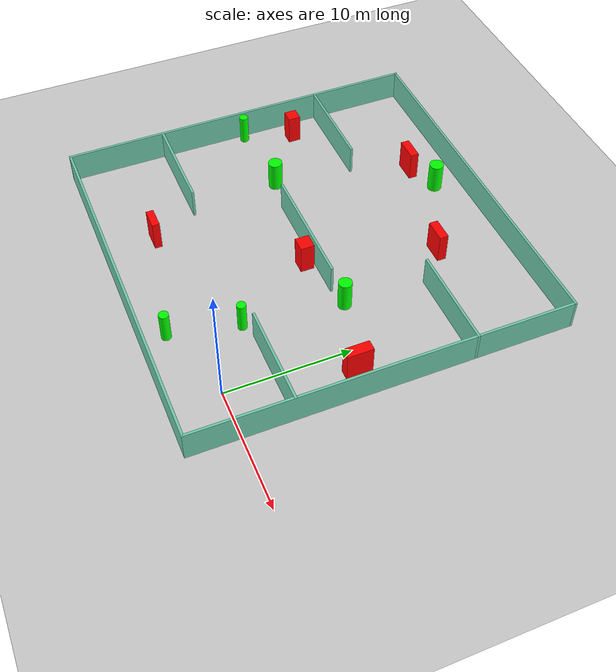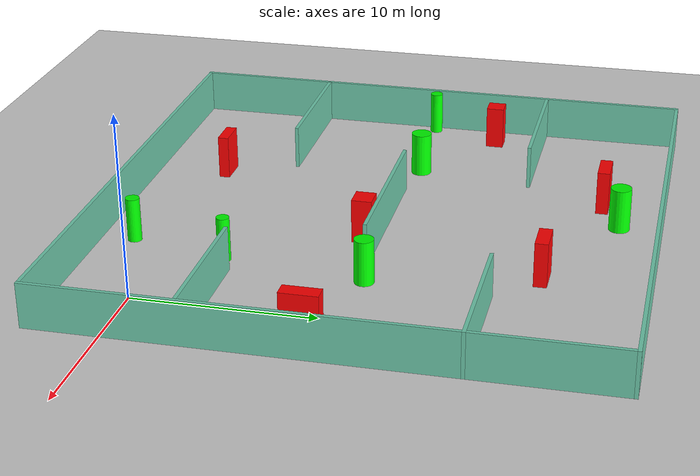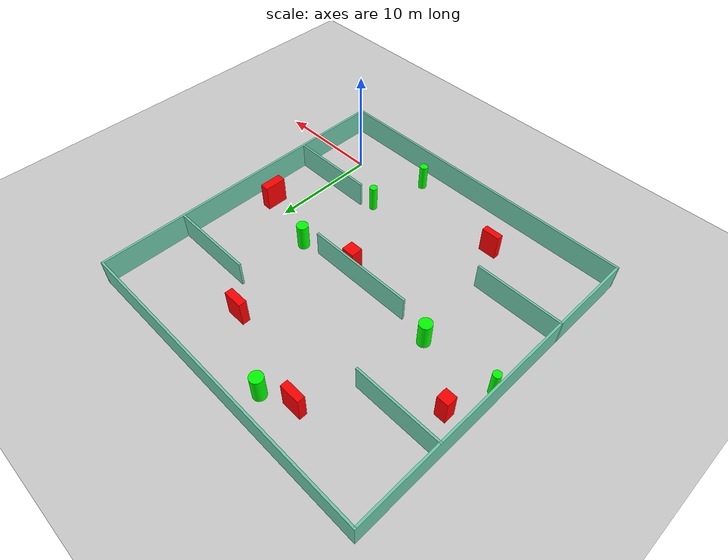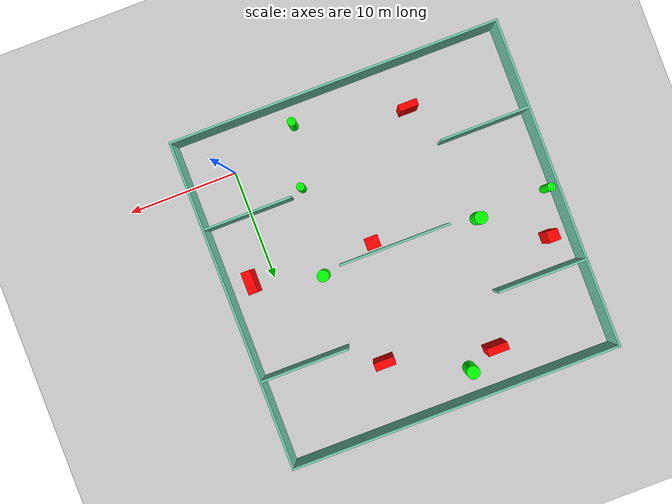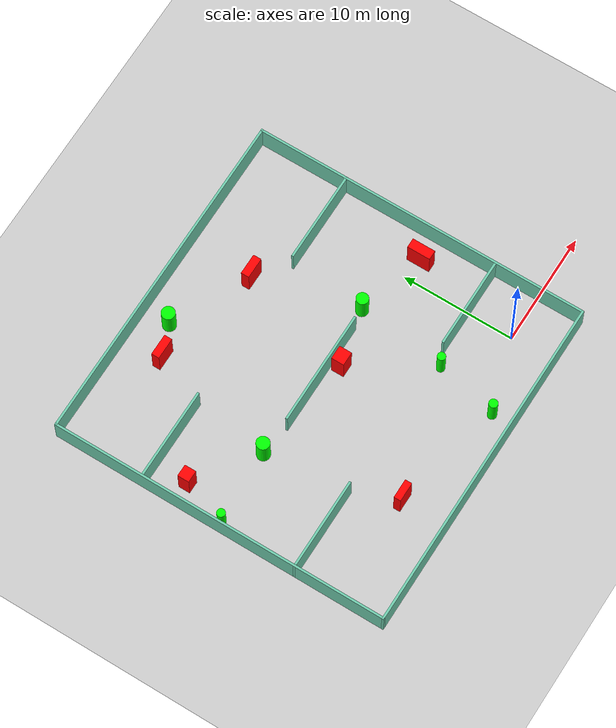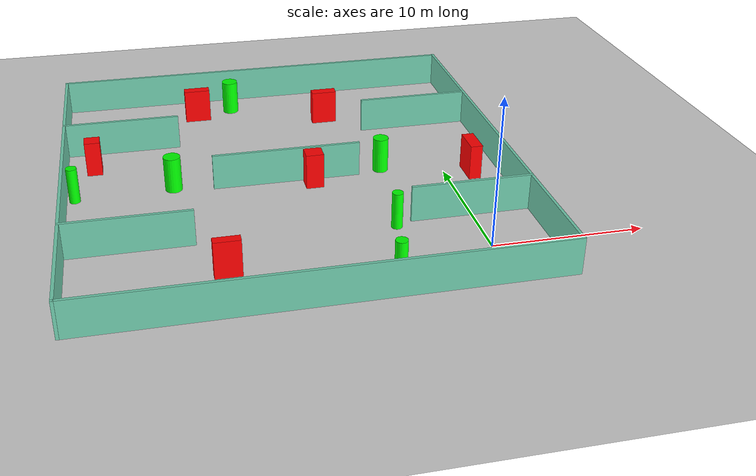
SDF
<sdf version="1.7">
 <world name="default">
  <light name="sun" type="directional">
   <pose>0 0 10 0 -0 0</pose>
   <diffuse>0.8 0.8 0.8 1</diffuse>
   <specular>0.2 0.2 0.2 1</specular>
   <attenuation>
    <range>1000</range>
    <constant>0.9</constant>
    <linear>0.01</linear>
    <quadratic>0.001</quadratic>
   </attenuation>
   <direction>-0.5 0.1 -0.9</direction>
   <spot><inner_angle>0</inner_angle><outer_angle>0</outer_angle><falloff>0</falloff></spot>
  </light>
  <model name="ground_plane">
   <static>1</static>
   <link name="link">
    <collision name="collision">
     <geometry><plane><normal>0 0 1</normal><size>100 100</size></plane></geometry>
     <surface>
      <contact><collide_bitmask>65535</collide_bitmask></contact>
      <friction><ode><mu>100</mu><mu2>50</mu2></ode></friction>
     </surface>
    </collision>
    <visual name="visual">
     <cast_shadows>0</cast_shadows>
     <geometry><plane><normal>0 0 1</normal><size>100 100</size></plane></geometry>
     <material>
      <script><uri>file://media/materials/scripts/gazebo.material</uri><name>Gazebo/Grey</name></script>
     </material>
    </visual>
   </link>
  </model>
  <gravity>0 0 -9.8</gravity>
  <magnetic_field>6e-06 2.3e-05 -4.2e-05</magnetic_field>
  <atmosphere type="adiabatic"/>
  <physics type="ode">
   <max_step_size>0.001</max_step_size>
   <real_time_factor>1</real_time_factor>
   <real_time_update_rate>1000</real_time_update_rate>
  </physics>
  <scene><ambient>0.4 0.4 0.4 1</ambient><background>0.7 0.7 0.7 1</background><shadows>1</shadows></scene>
  <spherical_coordinates>
   <surface_model>EARTH_WGS84</surface_model>
   <latitude_deg>0</latitude_deg>
   <longitude_deg>0</longitude_deg>
   <elevation>0</elevation>
   <heading_deg>0</heading_deg>
  </spherical_coordinates>
  <model name="my_base_walls">
   <link name="Wall_10">
    <collision name="Wall_10_Collision">
     <geometry><box><size>8.2 0.2 2.5</size></box></geometry>
     <pose>0 0 1.25 0 -0 0</pose>
    </collision>
    <visual name="Wall_10_Visual">
     <pose>0 0 1.25 0 -0 0</pose>
     <geometry><box><size>8.2 0.2 2.5</size></box></geometry>
     <material>
      <script><uri>file://media/materials/scripts/gazebo.material</uri><name>Gazebo/Grey</name></script>
      <ambient>0.435294 0.796078 0.67451 1</ambient>
     </material>
     <meta><layer>0</layer></meta>
    </visual>
    <pose>-11 -7 0 0 -0 0</pose>
   </link>
   <link name="Wall_12">
    <collision name="Wall_12_Collision">
     <geometry><box><size>8.2 0.2 2.5</size></box></geometry>
     <pose>0 0 1.25 0 -0 0</pose>
    </collision>
    <visual name="Wall_12_Visual">
     <pose>0 0 1.25 0 -0 0</pose>
     <geometry><box><size>8.2 0.2 2.5</size></box></geometry>
     <material>
      <script><uri>file://media/materials/scripts/gazebo.material</uri><name>Gazebo/Grey</name></script>
      <ambient>0.435294 0.796078 0.67451 1</ambient>
     </material>
     <meta><layer>0</layer></meta>
    </visual>
    <pose>-11 7 0 0 -0 0</pose>
   </link>
   <link name="Wall_14">
    <collision name="Wall_14_Collision">
     <geometry><box><size>8.2 0.2 2.5</size></box></geometry>
     <pose>0 0 1.25 0 -0 0</pose>
    </collision>
    <visual name="Wall_14_Visual">
     <pose>0 0 1.25 0 -0 0</pose>
     <geometry><box><size>8.2 0.2 2.5</size></box></geometry>
     <material>
      <script><uri>file://media/materials/scripts/gazebo.material</uri><name>Gazebo/Grey</name></script>
      <ambient>0.435294 0.796078 0.67451 1</ambient>
     </material>
     <meta><layer>0</layer></meta>
    </visual>
    <pose>11 7 0 0 -0 3.14159</pose>
   </link>
   <link name="Wall_16">
    <collision name="Wall_16_Collision">
     <geometry><box><size>10.2 0.2 2.5</size></box></geometry>
     <pose>0 0 1.25 0 -0 0</pose>
    </collision>
    <visual name="Wall_16_Visual">
     <pose>0 0 1.25 0 -0 0</pose>
     <geometry><box><size>10.2 0.2 2.5</size></box></geometry>
     <material>
      <script><uri>file://media/materials/scripts/gazebo.material</uri><name>Gazebo/Grey</name></script>
      <ambient>0.435294 0.796078 0.67451 1</ambient>
     </material>
     <meta><layer>0</layer></meta>
    </visual>
    <pose>0 0 0 0 -0 3.14159</pose>
   </link>
   <link name="Wall_2">
    <collision name="Wall_2_Collision">
     <geometry><box><size>30.2 0.2 2.5</size></box></geometry>
     <pose>0 0 1.25 0 -0 0</pose>
    </collision>
    <visual name="Wall_2_Visual">
     <pose>0 0 1.25 0 -0 0</pose>
     <geometry><box><size>30.2 0.2 2.5</size></box></geometry>
     <material>
      <script><uri>file://media/materials/scripts/gazebo.material</uri><name>Gazebo/Grey</name></script>
      <ambient>0.435294 0.796078 0.67451 1</ambient>
     </material>
     <meta><layer>0</layer></meta>
    </visual>
    <pose>0 -15 0 0 -0 3.14159</pose>
   </link>
   <link name="Wall_3">
    <collision name="Wall_3_Collision">
     <geometry><box><size>30.2 0.2 2.5</size></box></geometry>
     <pose>0 0 1.25 0 -0 0</pose>
    </collision>
    <visual name="Wall_3_Visual">
     <pose>0 0 1.25 0 -0 0</pose>
     <geometry><box><size>30.2 0.2 2.5</size></box></geometry>
     <material>
      <script><uri>file://media/materials/scripts/gazebo.material</uri><name>Gazebo/Grey</name></script>
      <ambient>0.435294 0.796078 0.67451 1</ambient>
     </material>
     <meta><layer>0</layer></meta>
    </visual>
    <pose>-15 0 0 0 -0 1.5708</pose>
   </link>
   <link name="Wall_4">
    <collision name="Wall_4_Collision">
     <geometry><box><size>30.2 0.2 2.5</size></box></geometry>
     <pose>0 0 1.25 0 -0 0</pose>
    </collision>
    <visual name="Wall_4_Visual">
     <pose>0 0 1.25 0 -0 0</pose>
     <geometry><box><size>30.2 0.2 2.5</size></box></geometry>
     <material>
      <script><uri>file://media/materials/scripts/gazebo.material</uri><name>Gazebo/Grey</name></script>
      <ambient>0.435294 0.796078 0.67451 1</ambient>
     </material>
     <meta><layer>0</layer></meta>
    </visual>
    <pose>0 15 0 0 -0 0</pose>
   </link>
   <link name="Wall_6">
    <collision name="Wall_6_Collision">
     <geometry><box><size>30.2 0.2 2.5</size></box></geometry>
     <pose>0 0 1.25 0 -0 0</pose>
    </collision>
    <visual name="Wall_6_Visual">
     <pose>0 0 1.25 0 -0 0</pose>
     <geometry><box><size>30.2 0.2 2.5</size></box></geometry>
     <material>
      <script><uri>file://media/materials/scripts/gazebo.material</uri><name>Gazebo/Grey</name></script>
      <ambient>0.435294 0.796078 0.67451 1</ambient>
     </material>
     <meta><layer>0</layer></meta>
    </visual>
    <pose>15 0 0 0 -0 1.5708</pose>
   </link>
   <link name="Wall_8">
    <collision name="Wall_8_Collision">
     <geometry><box><size>8.2 0.2 2.5</size></box></geometry>
     <pose>0 0 1.25 0 -0 0</pose>
    </collision>
    <visual name="Wall_8_Visual">
     <pose>0 0 1.25 0 -0 0</pose>
     <geometry><box><size>8.2 0.2 2.5</size></box></geometry>
     <material>
      <script><uri>file://media/materials/scripts/gazebo.material</uri><name>Gazebo/Grey</name></script>
      <ambient>0.435294 0.796078 0.67451 1</ambient>
     </material>
     <meta><layer>0</layer></meta>
    </visual>
    <pose>11 -7 0 0 -0 3.14159</pose>
   </link>
   <static>1</static>
   <pose>-11 11 0 0 -0 0</pose>
  </model>
  <model name="cylinder1">
   <static>1</static>
   <link name="link">
    <inertial>
     <mass>1</mass>
     <inertia><ixx>0.5</ixx><ixy>0</ixy><ixz>0</ixz><iyy>0.5</iyy><iyz>0</iyz><izz>1</izz></inertia>
    </inertial>
    <collision name="collision">
     <geometry><cylinder><radius>0.5799064954838511</radius><length>2.5</length></cylinder></geometry>
    </collision>
    <visual name="visual">
     <geometry><cylinder><radius>0.5799064954838511</radius><length>2.5</length></cylinder></geometry>
     <material>
      <ambient>0 1 0 1</ambient>
      <diffuse>0 1 0 1</diffuse>
      <specular>0.1 0.1 0.1 1</specular>
      <emissive>0 0 0 0</emissive>
     </material>
    </visual>
   </link>
   <pose>-18.7789576099513 11.455860967418289 1.25 0 0 0</pose>
  </model>
  <model name="cylinder2">
   <static>1</static>
   <link name="link">
    <inertial>
     <mass>1</mass>
     <inertia><ixx>0.5</ixx><ixy>0</ixy><ixz>0</ixz><iyy>0.5</iyy><iyz>0</iyz><izz>1</izz></inertia>
    </inertial>
    <collision name="collision">
     <geometry><cylinder><radius>0.38924615963266324</radius><length>2.5</length></cylinder></geometry>
    </collision>
    <visual name="visual">
     <geometry><cylinder><radius>0.38924615963266324</radius><length>2.5</length></cylinder></geometry>
     <material>
      <ambient>0 1 0 1</ambient>
      <diffuse>0 1 0 1</diffuse>
      <specular>0.1 0.1 0.1 1</specular>
      <emissive>0 0 0 0</emissive>
     </material>
    </visual>
   </link>
   <pose>-6.428359034083876 -2.0456112044076136 1.25 0 0 0</pose>
  </model>
  <model name="cylinder3">
   <static>1</static>
   <link name="link">
    <inertial>
     <mass>1</mass>
     <inertia><ixx>0.5</ixx><ixy>0</ixy><ixz>0</ixz><iyy>0.5</iyy><iyz>0</iyz><izz>1</izz></inertia>
    </inertial>
    <collision name="collision">
     <geometry><cylinder><radius>0.5354616418818804</radius><length>2.5</length></cylinder></geometry>
    </collision>
    <visual name="visual">
     <geometry><cylinder><radius>0.5354616418818804</radius><length>2.5</length></cylinder></geometry>
     <material>
      <ambient>0 1 0 1</ambient>
      <diffuse>0 1 0 1</diffuse>
      <specular>0.1 0.1 0.1 1</specular>
      <emissive>0 0 0 0</emissive>
     </material>
    </visual>
   </link>
   <pose>-4.268590855307572 11.343558810544797 1.25 0 0 0</pose>
  </model>
  <model name="cylinder4">
   <static>1</static>
   <link name="link">
    <inertial>
     <mass>1</mass>
     <inertia><ixx>0.5</ixx><ixy>0</ixy><ixz>0</ixz><iyy>0.5</iyy><iyz>0</iyz><izz>1</izz></inertia>
    </inertial>
    <collision name="collision">
     <geometry><cylinder><radius>0.5873724432858562</radius><length>2.5</length></cylinder></geometry>
    </collision>
    <visual name="visual">
     <geometry><cylinder><radius>0.5873724432858562</radius><length>2.5</length></cylinder></geometry>
     <material>
      <ambient>0 1 0 1</ambient>
      <diffuse>0 1 0 1</diffuse>
      <specular>0.1 0.1 0.1 1</specular>
      <emissive>0 0 0 0</emissive>
     </material>
    </visual>
   </link>
   <pose>-13.452200691800023 23.696844254482095 1.25 0 0 0</pose>
  </model>
  <model name="cylinder5">
   <static>1</static>
   <link name="link">
    <inertial>
     <mass>1</mass>
     <inertia><ixx>0.5</ixx><ixy>0</ixy><ixz>0</ixz><iyy>0.5</iyy><iyz>0</iyz><izz>1</izz></inertia>
    </inertial>
    <collision name="collision">
     <geometry><cylinder><radius>0.36148710250525157</radius><length>2.5</length></cylinder></geometry>
    </collision>
    <visual name="visual">
     <geometry><cylinder><radius>0.36148710250525157</radius><length>2.5</length></cylinder></geometry>
     <material>
      <ambient>0 1 0 1</ambient>
      <diffuse>0 1 0 1</diffuse>
      <specular>0.1 0.1 0.1 1</specular>
      <emissive>0 0 0 0</emissive>
     </material>
    </visual>
   </link>
   <pose>-5.170210651716028 3.4671237618186703 1.25 0 0 0</pose>
  </model>
  <model name="cylinder6">
   <static>1</static>
   <link name="link">
    <inertial>
     <mass>1</mass>
     <inertia><ixx>0.5</ixx><ixy>0</ixy><ixz>0</ixz><iyy>0.5</iyy><iyz>0</iyz><izz>1</izz></inertia>
    </inertial>
    <collision name="collision">
     <geometry><cylinder><radius>0.3659244226923451</radius><length>2.5</length></cylinder></geometry>
    </collision>
    <visual name="visual">
     <geometry><cylinder><radius>0.3659244226923451</radius><length>2.5</length></cylinder></geometry>
     <material>
      <ambient>0 1 0 1</ambient>
      <diffuse>0 1 0 1</diffuse>
      <specular>0.1 0.1 0.1 1</specular>
      <emissive>0 0 0 0</emissive>
     </material>
    </visual>
   </link>
   <pose>-25.36745068838524 11.1143513408581 1.25 0 0 0</pose>
  </model>
  <model name="box1">
   <static>1</static>
   <link name="link">
    <inertial>
     <mass>1</mass>
     <inertia><ixx>0.083</ixx><ixy>0</ixy><ixz>0</ixz><iyy>0.083</iyy><iyz>0</iyz><izz>0.083</izz></inertia>
    </inertial>
    <collision name="collision">
     <geometry><box><size>1.845266318298098 0.7184678406483477 2.5</size></box></geometry>
    </collision>
    <visual name="visual">
     <geometry><box><size>1.845266318298098 0.7184678406483477 2.5</size></box></geometry>
     <material>
      <ambient>1 0 0 1</ambient>
      <diffuse>1 0 0 1</diffuse>
      <specular>0.1 0.1 0.1 1</specular>
      <emissive>0 0 0 0</emissive>
     </material>
    </visual>
    <sensor name="my_contact" type="contact">
     <contact><collision>box_collision</collision><topic>__default_topic__</topic></contact>
    </sensor>
   </link>
   <pose>-6.569883325309187 20.315235676708706 1.25 0 0 0</pose>
  </model>
  <model name="box2">
   <static>1</static>
   <link name="link">
    <inertial>
     <mass>1</mass>
     <inertia><ixx>0.083</ixx><ixy>0</ixy><ixz>0</ixz><iyy>0.083</iyy><iyz>0</iyz><izz>0.083</izz></inertia>
    </inertial>
    <collision name="collision">
     <geometry><box><size>1.2241303139495723 1.1182602790495335 2.5</size></box></geometry>
    </collision>
    <visual name="visual">
     <geometry><box><size>1.2241303139495723 1.1182602790495335 2.5</size></box></geometry>
     <material>
      <ambient>1 0 0 1</ambient>
      <diffuse>1 0 0 1</diffuse>
      <specular>0.1 0.1 0.1 1</specular>
      <emissive>0 0 0 0</emissive>
     </material>
    </visual>
    <sensor name="my_contact" type="contact">
     <contact><collision>box_collision</collision><topic>__default_topic__</topic></contact>
    </sensor>
   </link>
   <pose>-9.282242125214665 10.160483355483995 1.25 0 0 0</pose>
  </model>
  <model name="box3">
   <static>1</static>
   <link name="link">
    <inertial>
     <mass>1</mass>
     <inertia><ixx>0.083</ixx><ixy>0</ixy><ixz>0</ixz><iyy>0.083</iyy><iyz>0</iyz><izz>0.083</izz></inertia>
    </inertial>
    <collision name="collision">
     <geometry><box><size>1.0536629390105425 1.0199908516259977 2.5</size></box></geometry>
    </collision>
    <visual name="visual">
     <geometry><box><size>1.0536629390105425 1.0199908516259977 2.5</size></box></geometry>
     <material>
      <ambient>1 0 0 1</ambient>
      <diffuse>1 0 0 1</diffuse>
      <specular>0.1 0.1 0.1 1</specular>
      <emissive>0 0 0 0</emissive>
     </material>
    </visual>
    <sensor name="my_contact" type="contact">
     <contact><collision>box_collision</collision><topic>__default_topic__</topic></contact>
    </sensor>
   </link>
   <pose>-24.047799863260252 15.114839686590383 1.25 0 0 0</pose>
  </model>
  <model name="box4">
   <static>1</static>
   <link name="link">
    <inertial>
     <mass>1</mass>
     <inertia><ixx>0.083</ixx><ixy>0</ixy><ixz>0</ixz><iyy>0.083</iyy><iyz>0</iyz><izz>0.083</izz></inertia>
    </inertial>
    <collision name="collision">
     <geometry><box><size>0.8468904748455126 2.057056958020018 2.5</size></box></geometry>
    </collision>
    <visual name="visual">
     <geometry><box><size>0.8468904748455126 2.057056958020018 2.5</size></box></geometry>
     <material>
      <ambient>1 0 0 1</ambient>
      <diffuse>1 0 0 1</diffuse>
      <specular>0.1 0.1 0.1 1</specular>
      <emissive>0 0 0 0</emissive>
     </material>
    </visual>
    <sensor name="my_contact" type="contact">
     <contact><collision>box_collision</collision><topic>__default_topic__</topic></contact>
    </sensor>
   </link>
   <pose>1.8582646551618147 9.633998210988118 1.25 0 0 0</pose>
  </model>
  <model name="box5">
   <static>1</static>
   <link name="link">
    <inertial>
     <mass>1</mass>
     <inertia><ixx>0.083</ixx><ixy>0</ixy><ixz>0</ixz><iyy>0.083</iyy><iyz>0</iyz><izz>0.083</izz></inertia>
    </inertial>
    <collision name="collision">
     <geometry><box><size>1.8944512893660768 0.6924764501720986 2.5</size></box></geometry>
    </collision>
    <visual name="visual">
     <geometry><box><size>1.8944512893660768 0.6924764501720986 2.5</size></box></geometry>
     <material>
      <ambient>1 0 0 1</ambient>
      <diffuse>1 0 0 1</diffuse>
      <specular>0.1 0.1 0.1 1</specular>
      <emissive>0 0 0 0</emissive>
     </material>
    </visual>
    <sensor name="my_contact" type="contact">
     <contact><collision>box_collision</collision><topic>__default_topic__</topic></contact>
    </sensor>
   </link>
   <pose>-16.138154735532588 22.568571660273527 1.25 0 0 0</pose>
  </model>
  <model name="box6">
   <static>1</static>
   <link name="link">
    <inertial>
     <mass>1</mass>
     <inertia><ixx>0.083</ixx><ixy>0</ixy><ixz>0</ixz><iyy>0.083</iyy><iyz>0</iyz><izz>0.083</izz></inertia>
    </inertial>
    <collision name="collision">
     <geometry><box><size>1.7027969506044176 0.6064807199078657 2.5</size></box></geometry>
    </collision>
    <visual name="visual">
     <geometry><box><size>1.7027969506044176 0.6064807199078657 2.5</size></box></geometry>
     <material>
      <ambient>1 0 0 1</ambient>
      <diffuse>1 0 0 1</diffuse>
      <specular>0.1 0.1 0.1 1</specular>
      <emissive>0 0 0 0</emissive>
     </material>
    </visual>
    <sensor name="my_contact" type="contact">
     <contact><collision>box_collision</collision><topic>__default_topic__</topic></contact>
    </sensor>
   </link>
   <pose>-16.343421498886713 0.17007618057657625 1.25 0 0 0</pose>
  </model>
 </world>
</sdf>
